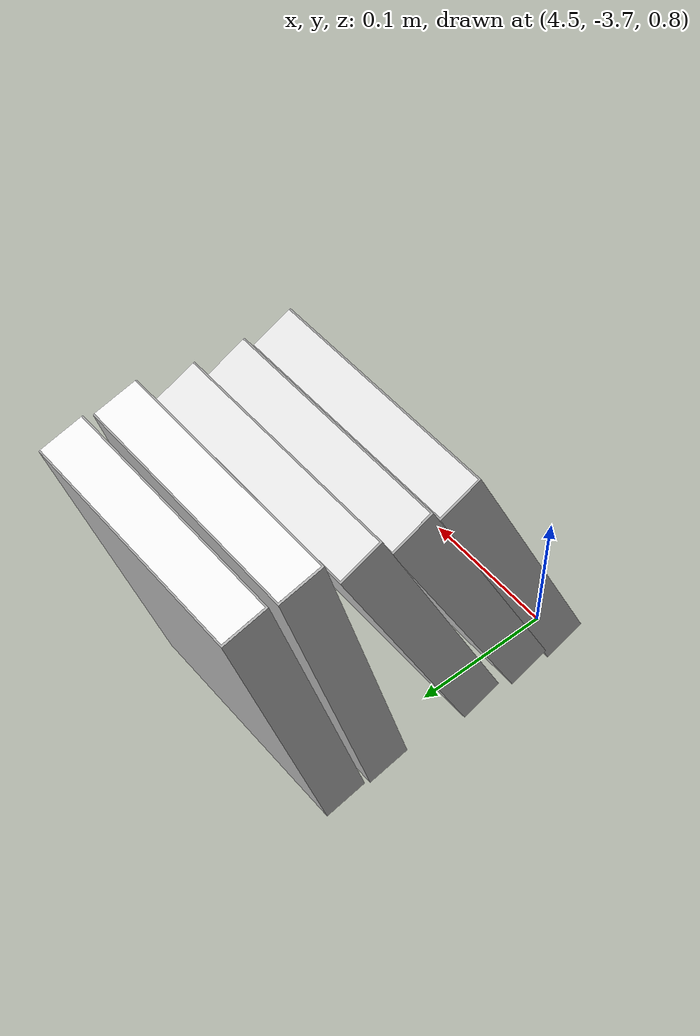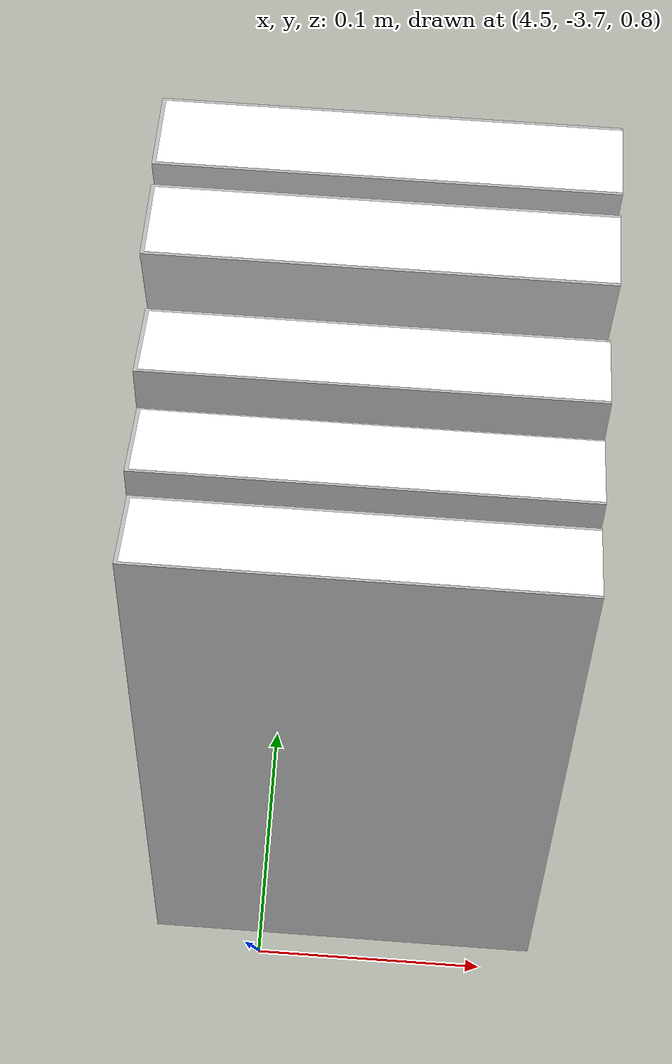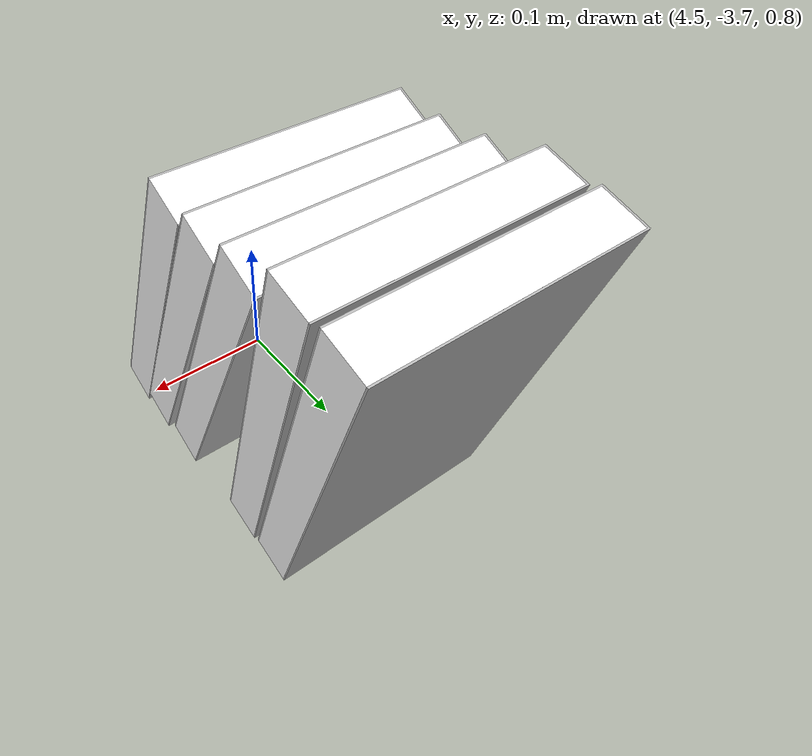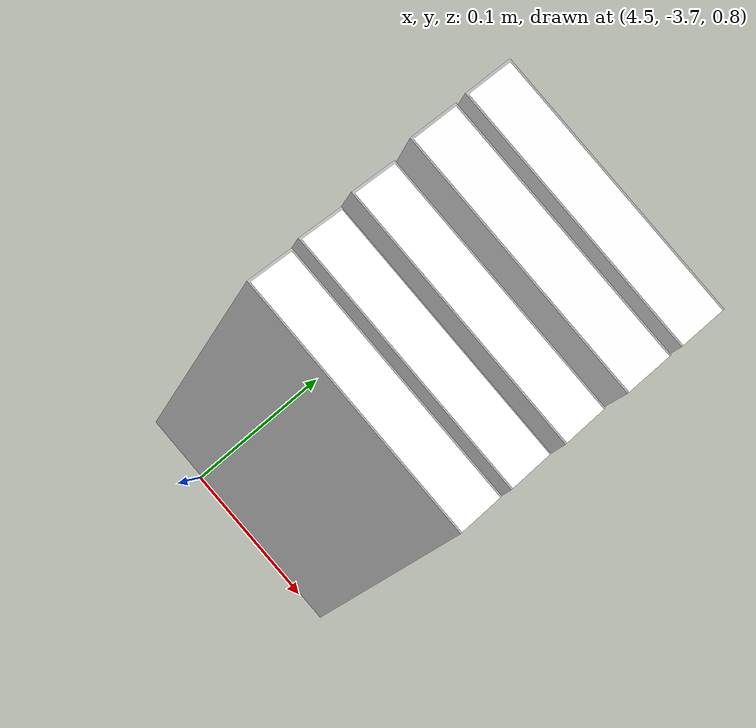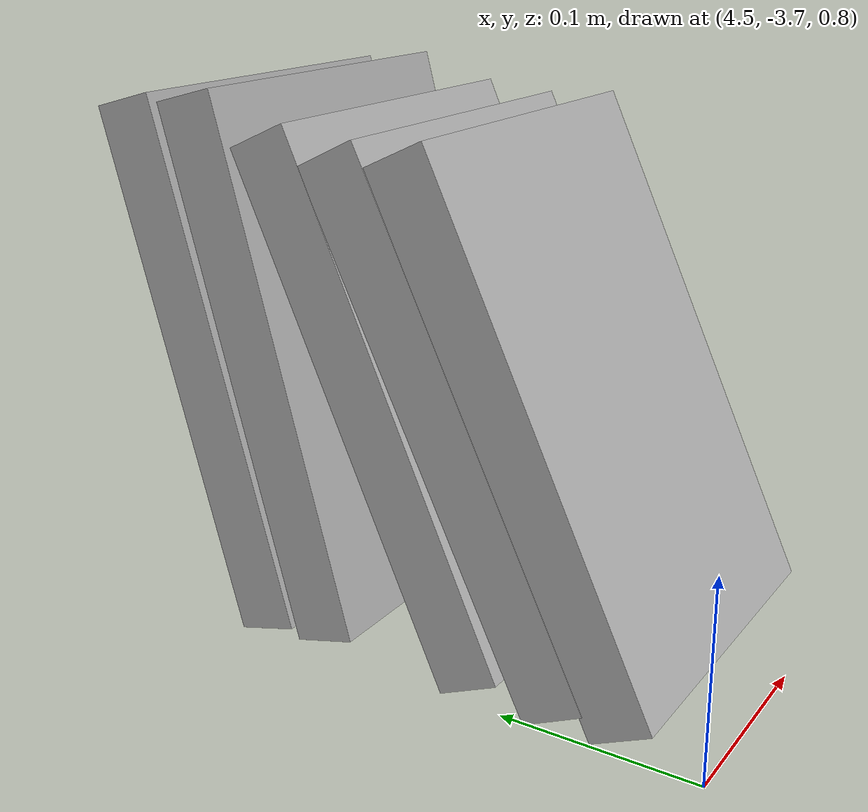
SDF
<sdf version="1.7">
 <world name="default">
  <model name="ground_plane">
   <static>1</static>
   <link name="link">
    <collision name="collision">
     <geometry><plane><normal>0 0 1</normal><size>100 100</size></plane></geometry>
     <surface><friction><ode><mu>100</mu><mu2>50</mu2></ode></friction></surface>
    </collision>
    <visual name="visual">
     <cast_shadows>0</cast_shadows>
     <geometry><plane><normal>0 0 1</normal><size>100 100</size></plane></geometry>
     <material>
      <script><uri>file://media/materials/scripts/gazebo.material</uri><name>Gazebo/Grey</name></script>
     </material>
    </visual>
   </link>
  </model>
  <model name="book_10">
   <link name="cover">
    <pose>0 -0.000108 0.015405 0 -0 0</pose>
    <visual name="visual">
     <geometry><box><size>0.245 0.16 0.03</size></box></geometry>
     <material>
      <script>
       <uri>model://book_10/materials/scripts</uri>
       <uri>model://book_10/materials/textures</uri>
       <name>book_10</name>
      </script>
     </material>
    </visual>
    <collision name="collision"><geometry><box><size>0.245 0.16 0.03</size></box></geometry></collision>
   </link>
   <link name="page">
    <pose>0 0.000608 0.015405 0 -0 0</pose>
    <visual name="visual">
     <geometry><box><size>0.24502 0.15862 0.028</size></box></geometry>
     <material>
      <lighting>1</lighting>
      <ambient>1 1 1 1</ambient>
      <diffuse>1 1 1 1</diffuse>
      <specular>0.01 0.01 0.01 1</specular>
      <emissive>0 0 0 1</emissive>
      <shader type="vertex"><normal_map>__default__</normal_map></shader>
     </material>
    </visual>
    <collision name="collision"><geometry><box><size>0.245 0.16 0.03</size></box></geometry></collision>
   </link>
   <static>1</static>
   <pose>4.53805 -3.48289 0.958324 3.13855 -1.30602 1.57134</pose>
  </model>
  <model name="book_1">
   <link name="cover">
    <pose>0 -0.000108 0.015405 0 -0 0</pose>
    <visual name="visual">
     <geometry><box><size>0.245 0.16 0.03</size></box></geometry>
     <material>
      <script>
       <uri>model://book_1/materials/scripts</uri>
       <uri>model://book_1/materials/textures</uri>
       <name>book_1</name>
      </script>
     </material>
    </visual>
    <collision name="collision"><geometry><box><size>0.245 0.16 0.03</size></box></geometry></collision>
   </link>
   <link name="page">
    <pose>0 0.000608 0.015405 0 -0 0</pose>
    <visual name="visual">
     <geometry><box><size>0.24502 0.15862 0.028</size></box></geometry>
     <material>
      <lighting>1</lighting>
      <ambient>1 1 1 1</ambient>
      <diffuse>1 1 1 1</diffuse>
      <specular>0.01 0.01 0.01 1</specular>
      <emissive>0 0 0 1</emissive>
      <shader type="vertex"><normal_map>__default__</normal_map></shader>
     </material>
    </visual>
    <collision name="collision"><geometry><box><size>0.245 0.16 0.03</size></box></geometry></collision>
   </link>
   <static>1</static>
   <pose>4.53796 -3.57288 0.95783 3.13964 -1.15052 1.57019</pose>
  </model>
  <model name="book_12">
   <link name="cover">
    <pose>0 -0.000108 0.015405 0 -0 0</pose>
    <visual name="visual">
     <geometry><box><size>0.245 0.16 0.03</size></box></geometry>
     <material>
      <script>
       <uri>model://book_12/materials/scripts</uri>
       <uri>model://book_12/materials/textures</uri>
       <name>book_12</name>
      </script>
     </material>
    </visual>
    <collision name="collision"><geometry><box><size>0.245 0.16 0.03</size></box></geometry></collision>
   </link>
   <link name="page">
    <pose>0 0.000608 0.015405 0 -0 0</pose>
    <visual name="visual">
     <geometry><box><size>0.24502 0.15862 0.028</size></box></geometry>
     <material>
      <lighting>1</lighting>
      <ambient>1 1 1 1</ambient>
      <diffuse>1 1 1 1</diffuse>
      <specular>0.01 0.01 0.01 1</specular>
      <emissive>0 0 0 1</emissive>
      <shader type="vertex"><normal_map>__default__</normal_map></shader>
     </material>
    </visual>
    <collision name="collision"><geometry><box><size>0.245 0.16 0.03</size></box></geometry></collision>
   </link>
   <static>1</static>
   <pose>4.53794 -3.60986 0.955818 3.13975 -1.123 1.57007</pose>
  </model>
  <model name="book_14">
   <link name="cover">
    <pose>0 -0.000108 0.015405 0 -0 0</pose>
    <visual name="visual">
     <geometry><box><size>0.245 0.16 0.03</size></box></geometry>
     <material>
      <script>
       <uri>model://book_14/materials/scripts</uri>
       <uri>model://book_14/materials/textures</uri>
       <name>book_14</name>
      </script>
     </material>
    </visual>
    <collision name="collision"><geometry><box><size>0.245 0.16 0.03</size></box></geometry></collision>
   </link>
   <link name="page">
    <pose>0 0.000608 0.015405 0 -0 0</pose>
    <visual name="visual">
     <geometry><box><size>0.24502 0.15862 0.028</size></box></geometry>
     <material>
      <lighting>1</lighting>
      <ambient>1 1 1 1</ambient>
      <diffuse>1 1 1 1</diffuse>
      <specular>0.01 0.01 0.01 1</specular>
      <emissive>0 0 0 1</emissive>
      <shader type="vertex"><normal_map>__default__</normal_map></shader>
     </material>
    </visual>
    <collision name="collision"><geometry><box><size>0.245 0.16 0.03</size></box></geometry></collision>
   </link>
   <static>1</static>
   <pose>4.53795 -3.51692 0.962229 3.13848 -1.31226 1.57142</pose>
  </model>
  <model name="book_17">
   <link name="cover">
    <pose>0 -0.000108 0.015405 0 -0 0</pose>
    <visual name="visual">
     <geometry><box><size>0.245 0.16 0.03</size></box></geometry>
     <material>
      <script>
       <uri>model://book_17/materials/scripts</uri>
       <uri>model://book_17/materials/textures</uri>
       <name>book_17</name>
      </script>
     </material>
    </visual>
    <collision name="collision"><geometry><box><size>0.245 0.16 0.03</size></box></geometry></collision>
   </link>
   <link name="page">
    <pose>0 0.000608 0.015405 0 -0 0</pose>
    <visual name="visual">
     <geometry><box><size>0.24502 0.15862 0.028</size></box></geometry>
     <material>
      <lighting>1</lighting>
      <ambient>1 1 1 1</ambient>
      <diffuse>1 1 1 1</diffuse>
      <specular>0.01 0.01 0.01 1</specular>
      <emissive>0 0 0 1</emissive>
      <shader type="vertex"><normal_map>__default__</normal_map></shader>
     </material>
    </visual>
    <collision name="collision"><geometry><box><size>0.245 0.16 0.03</size></box></geometry></collision>
   </link>
   <static>1</static>
   <pose>4.53801 -3.64141 0.957888 3.13972 -1.13115 1.5701</pose>
  </model>
 </world>
</sdf>
